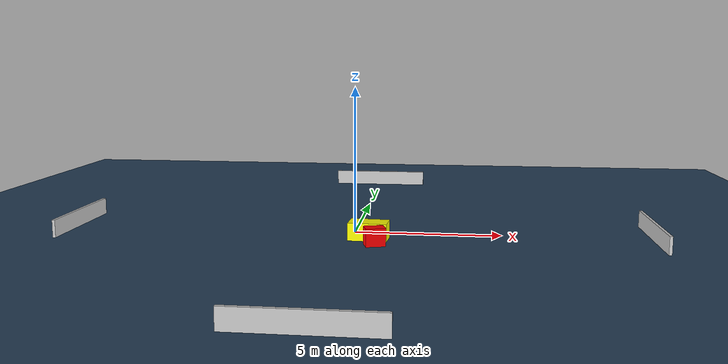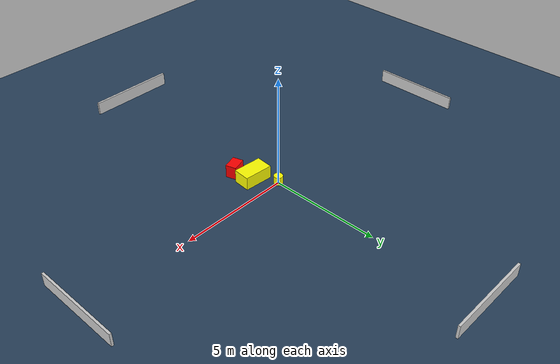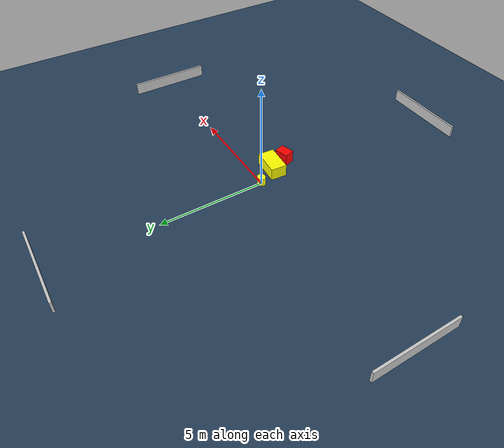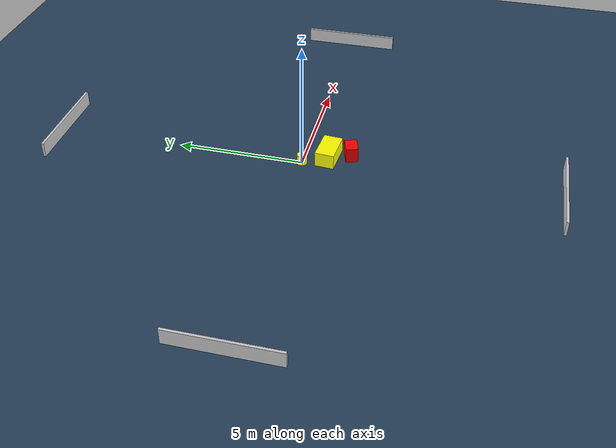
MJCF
<?xml version="1.0" ?>
<mujoco model="generated_environment">
  <option timestep="0.01" integrator="RK4" cone="elliptic"/>
  <default>
    <geom density="1"/>
  </default>
  <asset>
    <texture builtin="gradient" height="3072" name="skybox" rgb1="0.3 0.5 0.7" rgb2="0 0 0" type="skybox" width="512"/>
    <texture builtin="checker" height="300" name="groundplane" rgb1="0.2 0.3 0.4" rgb2="0.1 0.2 0.3" type="2d" width="300"/>
    <material name="groundplane" reflectance="0.2" texrepeat="5 5" texture="groundplane"/>
  </asset>
  <worldbody>
    <light dir="0 0 -1" directional="true" pos="0 0 1.5"/>
    <geom condim="3" friction="0.5 0.005 0.001" material="groundplane" name="floor" pos="0 0 0" size="0 0 0.05" type="plane"/>
    <body name="walls">
      <geom name="wall_1" condim="4" pos="-10.0 0.0 0.3" rgba="0.800000011920929 0.800000011920929 0.800000011920929 1.0" size="0.05 2.0 0.3" type="box"/>
      <geom name="wall_2" condim="4" pos="10.0 0.0 0.3" rgba="0.800000011920929 0.800000011920929 0.800000011920929 1.0" size="0.05 2.0 0.3" type="box"/>
      <geom name="wall_3" condim="4" pos="0.0 -10.0 0.3" rgba="0.800000011920929 0.800000011920929 0.800000011920929 1.0" size="2.0 0.05 0.3" type="box"/>
      <geom name="wall_4" condim="4" pos="0.0 10.0 0.3" rgba="0.800000011920929 0.800000011920929 0.800000011920929 1.0" size="2.0 0.05 0.3" type="box"/>
    </body>
    <body name="robot">
      <joint name="joint_x" type="slide" pos="0 0 0" axis="1 0 0"/>
      <joint name="joint_y" type="slide" pos="0 0 0" axis="0 1 0"/>
      <geom name="robot" type="cylinder" pos="0.0 0.0 0.2" size="0.2 0.2 0.0" mass="5.0" friction="1.0 0.005 0.0001" condim="4" rgba="1.0 1.0 0.0 1.0"/>
    </body>
    <body name="obstacle_1_movable">
      <geom name="obstacle_1_movable" condim="4" pos="0.5613516645283284 -0.9458296098070077 0.3" euler="0 0 265.64754064745597" friction="0.0 0.005 0.001" rgba="1.0 1.0 0.0 1.0" size="0.3800029495321464 0.6516884390217561 0.3" type="box" mass="0.1"/>
      <joint type="free"/>
    </body>
    <body name="obstacle_2_static">
      <geom name="obstacle_2_static" condim="4" pos="0.8296779202721343 -1.785336096331857 0.3" euler="0 0 286.93154421445286" friction="0.0 0.005 0.001" rgba="1.0 0.0 0.0 1.0" size="0.24266384502521207 0.3276132101851704 0.3" type="box"/>
    </body>
  </worldbody>
  <actuator>
    <motor name="actuator_x" joint="joint_x" gear="1" ctrlrange="-1 1"/>
    <motor name="actuator_y" joint="joint_y" gear="1" ctrlrange="-1 1"/>
  </actuator>
</mujoco>
